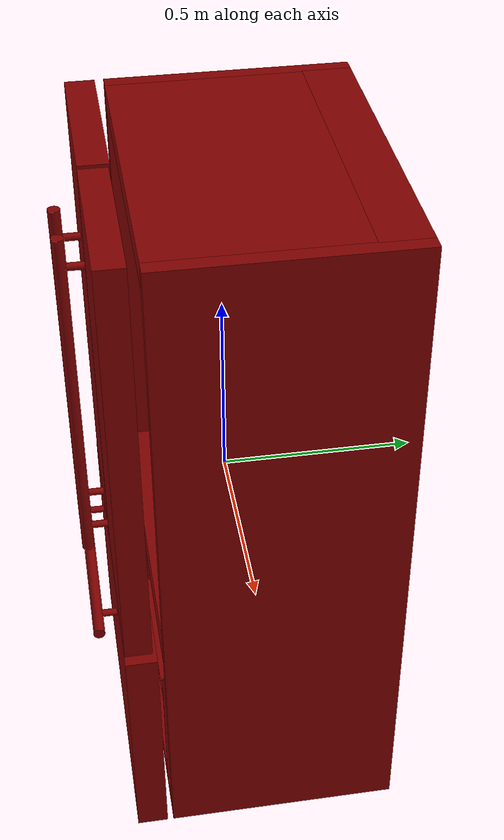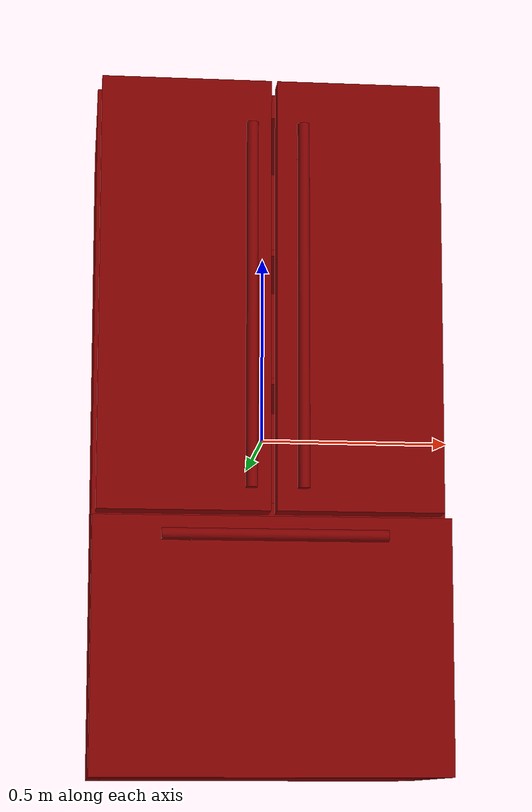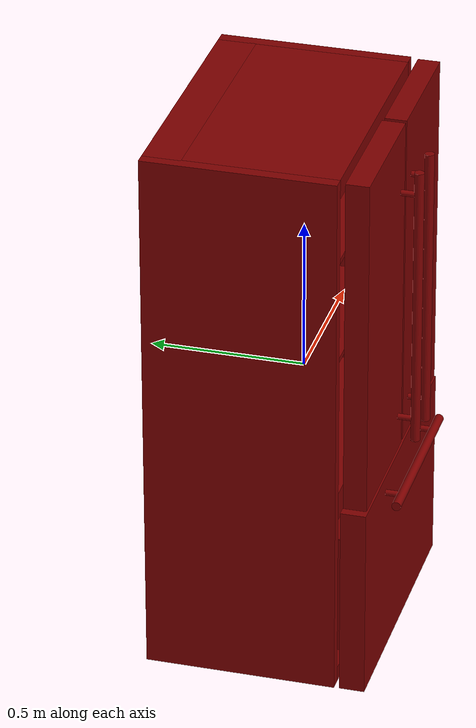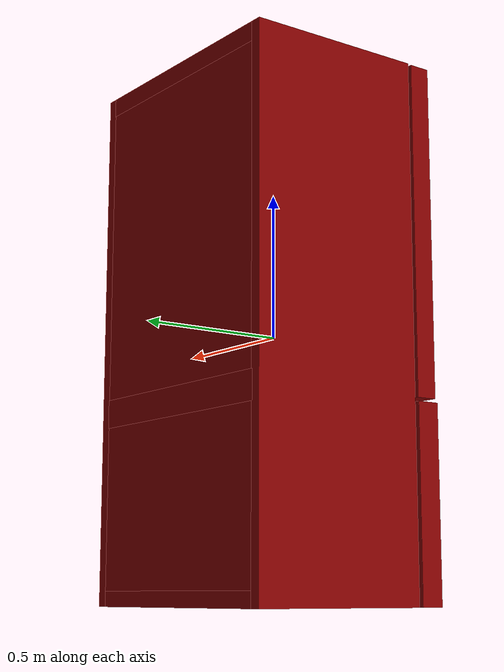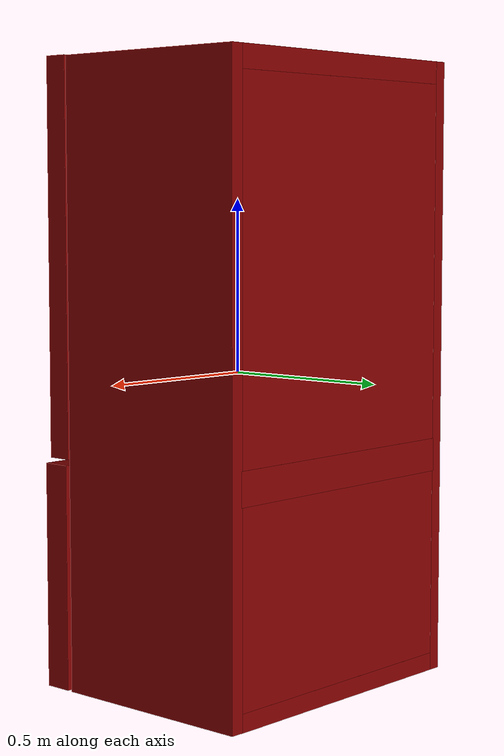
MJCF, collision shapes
<mujoco model="model">
  <compiler angle="radian"/>
  <asset>
    <mesh file="visuals/Body001.obj" name="Body001_vis"/>
    <mesh file="visuals/Body001_Clear.obj" name="Body001_Clear_vis"/>
    <mesh file="visuals/Door001.obj" name="Door001_vis"/>
    <mesh file="visuals/Door002.obj" name="Door002_vis"/>
    <mesh file="visuals/Drawer001.obj" name="Drawer001_vis"/>
    <texture file="visuals/T_BC001.png" name="Body001_material" type="2d"/>
    <material name="Body001_material" rgba="1 1 1 1.0" texture="Body001_material" shininess="0.7577263116836548" specular="0.3103448502657381"/>
    <material name="Body001_Clear_material" rgba="0.6760485172271729 0.8000229597091675 0.7606381177902222 0.27272725105285645" shininess="0.5" specular="0.3103448502657381"/>
    <texture file="visuals/T_BC001.png" name="Door001_material" type="2d"/>
    <material name="Door001_material" rgba="1 1 1 1.0" texture="Door001_material" shininess="0.7577263116836548" specular="0.3103448502657381"/>
    <texture file="visuals/T_BC001.png" name="Door002_material" type="2d"/>
    <material name="Door002_material" rgba="1 1 1 1.0" texture="Door002_material" shininess="0.7577263116836548" specular="0.3103448502657381"/>
    <texture file="visuals/T_BC001.png" name="Drawer001_material" type="2d"/>
    <material name="Drawer001_material" rgba="1 1 1 1.0" texture="Drawer001_material" shininess="0.7577263116836548" specular="0.3103448502657381"/>
  </asset>
  <default>
    <default class="visual">
      <geom conaffinity="0" contype="0" group="1" type="mesh"/>
    </default>
    <default class="collision">
      <geom group="0" rgba="0.5 0 0 0.5"/>
    </default>
    <default class="spawn">
      <geom group="0" rgba="1 1 1 0.5" contype="0" conaffinity="0"/>
      <site group="0" rgba="1 1 1 0.5"/>
    </default>
    <default class="region">
      <geom group="1" conaffinity="0" contype="0" rgba="0 1 0 0"/>
    </default>
  </default>
  <worldbody>
    <body>
      <body name="object">
        <geom mesh="Body001_vis" type="mesh" solimp="0.998 0.998 0.001" solref="0.001 1" density="100" friction="0.95 0.3 0.1" class="visual" material="Body001_material"/>
        <geom class="collision" type="box" pos="-0.435859 0.085504 -0.000736" size="0.01924789324402809 0.3094015419483185 0.8944895267486572" quat="1.0 0.0 0.0 0.0"/>
        <geom class="collision" type="box" pos="0.435163 0.085489 -0.000407" size="0.019758475944399834 0.3093862235546112 0.8941609859466553" quat="1.0 0.0 0.0 0.0"/>
        <geom class="collision" type="box" pos="-0.001468 0.332810 -0.000712" size="0.419253945350647 0.06195899099111557 0.894465982913971" quat="1.0 0.0 0.0 0.0"/>
        <geom class="collision" type="box" pos="-0.000991 0.085489 0.861539" size="0.4200219213962555 0.3093862235546112 0.03221452236175537" quat="1.0 0.0 0.0 0.0"/>
        <geom class="collision" type="box" pos="-0.000991 0.085507 -0.247524" size="0.4200219213962555 0.3094046115875244 0.04818296059966087" quat="1.0 0.0 0.0 0.0"/>
        <geom class="collision" type="box" pos="-0.000991 0.085467 -0.869294" size="0.4200219213962555 0.309364378452301 0.025992712005972862" quat="1.0 0.0 0.0 0.0"/>
        <body name="Body001_Clear">
          <geom mesh="Body001_Clear_vis" type="mesh" solimp="0.998 0.998 0.001" solref="0.001 1" density="100" friction="0.95 0.3 0.1" class="visual" material="Body001_Clear_material"/>
          <geom class="collision" type="box" pos="0.002363 0.044678 0.479241" size="0.40693676471710205 0.20570765435695648 0.008224813267588615" quat="1.0 0.0 0.0 0.0"/>
          <geom class="collision" type="box" pos="0.002363 0.044678 0.132641" size="0.40693676471710205 0.20570765435695648 0.008224813267588615" quat="1.0 0.0 0.0 0.0"/>
        </body>
        <body name="Door001">
          <joint axis="0.0 0.0 -1.0" pos="-0.405390 -0.275954 0.293100" limited="true" name="Door001_joint" range="0.0 1.5707963267948966" type="hinge" damping="1" frictionloss="1" armature=".01" stiffness="0.05"/>
          <geom mesh="Door001_vis" type="mesh" solimp="0.998 0.998 0.001" solref="0.001 1" density="100" friction="0.95 0.3 0.1" class="visual" material="Door001_material"/>
          <geom class="collision" type="box" pos="-0.225348 -0.284012 0.332498" size="0.21971549093723297 0.03745518997311592 0.5650722980499268" quat="1.0 0.0 0.0 0.0"/>
          <geom class="collision" type="cylinder" pos="-0.060673 -0.380778 0.290526" size="0.015450036153197289 0.47307562828063965" quat="1.0 0.0 0.0 0.0"/>
          <geom class="collision" type="cylinder" pos="-0.060485 -0.347380 -0.106622" size="0.00958966463804245 0.02388261817395687" quat="0.7071067094802856 0.7071068286895752 0.0 0.0"/>
          <geom class="collision" type="cylinder" pos="-0.060485 -0.347380 0.686881" size="0.00958966463804245 0.02388261817395687" quat="0.7071067094802856 0.7071068286895752 0.0 0.0"/>
        </body>
        <body name="Door002">
          <joint axis="0.0 0.0 1.0" pos="0.394847 -0.275179 0.293100" limited="true" name="Door002_joint" range="0.0 1.5707963267948966" type="hinge" damping="1" frictionloss="1" armature=".01" stiffness="0.05"/>
          <geom mesh="Door002_vis" type="mesh" solimp="0.998 0.998 0.001" solref="0.001 1" density="100" friction="0.95 0.3 0.1" class="visual" material="Door002_material"/>
          <geom class="collision" type="box" pos="0.223580 -0.285967 0.332498" size="0.21357685327529907 0.0355009026825428 0.5650722980499268" quat="1.0 0.0 0.0 0.0"/>
          <geom class="collision" type="cylinder" pos="0.070623 -0.380399 0.290526" size="0.015450036153197289 0.47307562828063965" quat="1.0 0.0 0.0 0.0"/>
          <geom class="collision" type="cylinder" pos="0.070771 -0.347380 -0.106622" size="0.00958966463804245 0.02388261817395687" quat="0.7071067094802856 0.7071068286895752 0.0 0.0"/>
          <geom class="collision" type="cylinder" pos="0.070771 -0.347380 0.686881" size="0.00958966463804245 0.02388261817395687" quat="0.7071067094802856 0.7071068286895752 0.0 0.0"/>
        </body>
        <body name="Drawer001">
          <joint axis="0.0 -1.0 0.0" pos="-0.000078 -0.056591 -0.569250" limited="true" name="Drawer001_joint" range="0.0 0.45" type="slide" damping="1" frictionloss="1" armature=".01" stiffness="0.05"/>
          <geom mesh="Drawer001_vis" type="mesh" solimp="0.998 0.998 0.001" solref="0.001 1" density="100" friction="0.95 0.3 0.1" class="visual" material="Drawer001_material"/>
          <geom class="collision" type="box" pos="0.000236 -0.281077 -0.570578" size="0.45428305864334106 0.040993329137563705 0.3240372836589813" quat="1.0 0.0 0.0 0.0"/>
          <geom class="collision" type="cylinder" pos="0.000463 -0.376164 -0.300495" size="0.01512225717306137 0.2832430899143219" quat="0.7071068286895752 -0.0 0.7071067690849304 0.0"/>
          <geom class="collision" type="box" pos="0.401157 0.006057 -0.575787" size="0.00207915878854692 0.23485112190246582 0.20430701971054077" quat="1.0 0.0 0.0 0.0"/>
          <geom class="collision" type="box" pos="-0.407708 0.006057 -0.575787" size="0.00207915878854692 0.23485112190246582 0.20430701971054077" quat="1.0 0.0 0.0 0.0"/>
          <geom class="collision" type="box" pos="0.004714 0.248882 -0.575787" size="0.3954424262046814 0.003384634619578719 0.20430701971054077" quat="1.0 0.0 0.0 0.0"/>
          <geom class="collision" type="box" pos="0.004714 0.022027 -0.790851" size="0.3954424262046814 0.23100967705249786 0.008599541150033474" quat="1.0 0.0 0.0 0.0"/>
          <geom class="collision" type="cylinder" pos="-0.207255 -0.347380 -0.300733" size="0.00958966463804245 0.02388261817395687" quat="0.7071067094802856 0.7071068286895752 0.0 0.0"/>
          <geom class="collision" type="cylinder" pos="0.208816 -0.347380 -0.300733" size="0.00958966463804245 0.02388261817395687" quat="0.7071067094802856 0.7071068286895752 0.0 0.0"/>
        </body>
        <geom class="region" name="reg_main" type="box" pos="0.0 0.03338550000000001 0.0" size="0.455715 0.3615255 0.89525"/>
      </body>
    </body>
  </worldbody>
  <actuator>
    <motor name="Door001_joint_actuator" joint="Door001_joint" gear="50"/>
    <motor name="Door002_joint_actuator" joint="Door002_joint" gear="50"/>
    <motor name="Drawer001_joint_actuator" joint="Drawer001_joint" gear="50"/>
  </actuator>
</mujoco>
